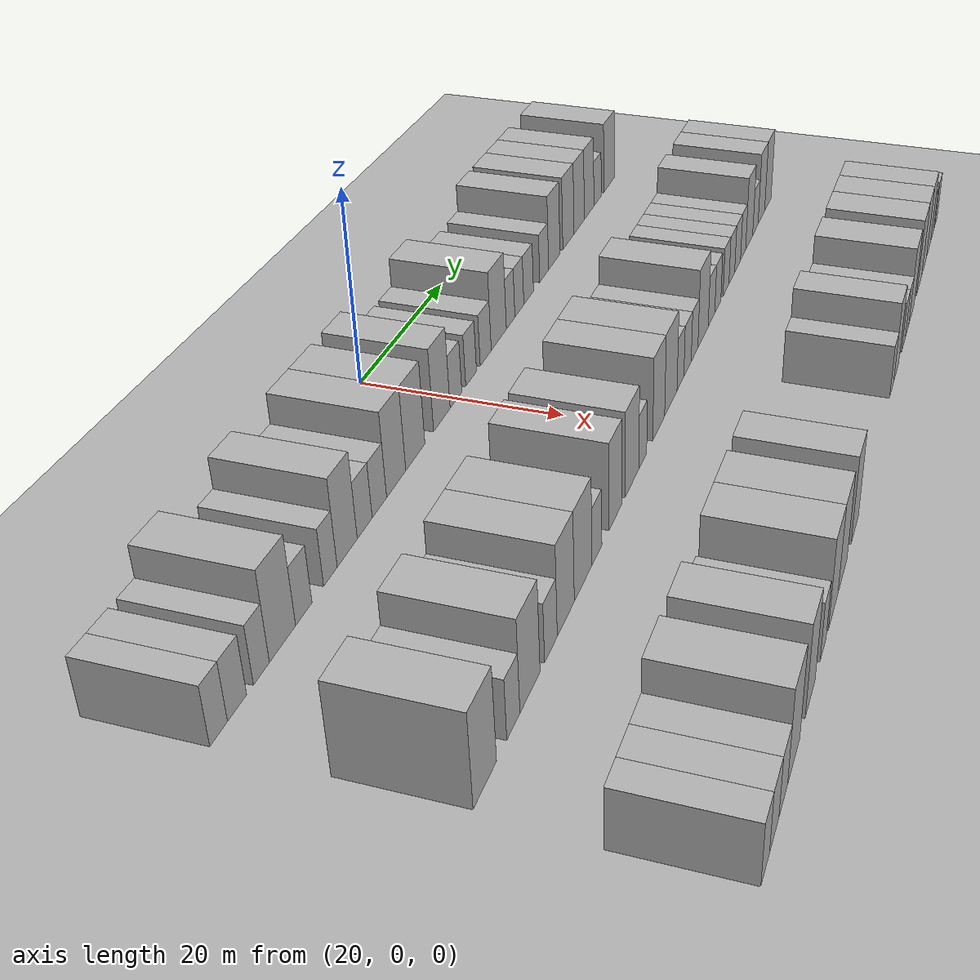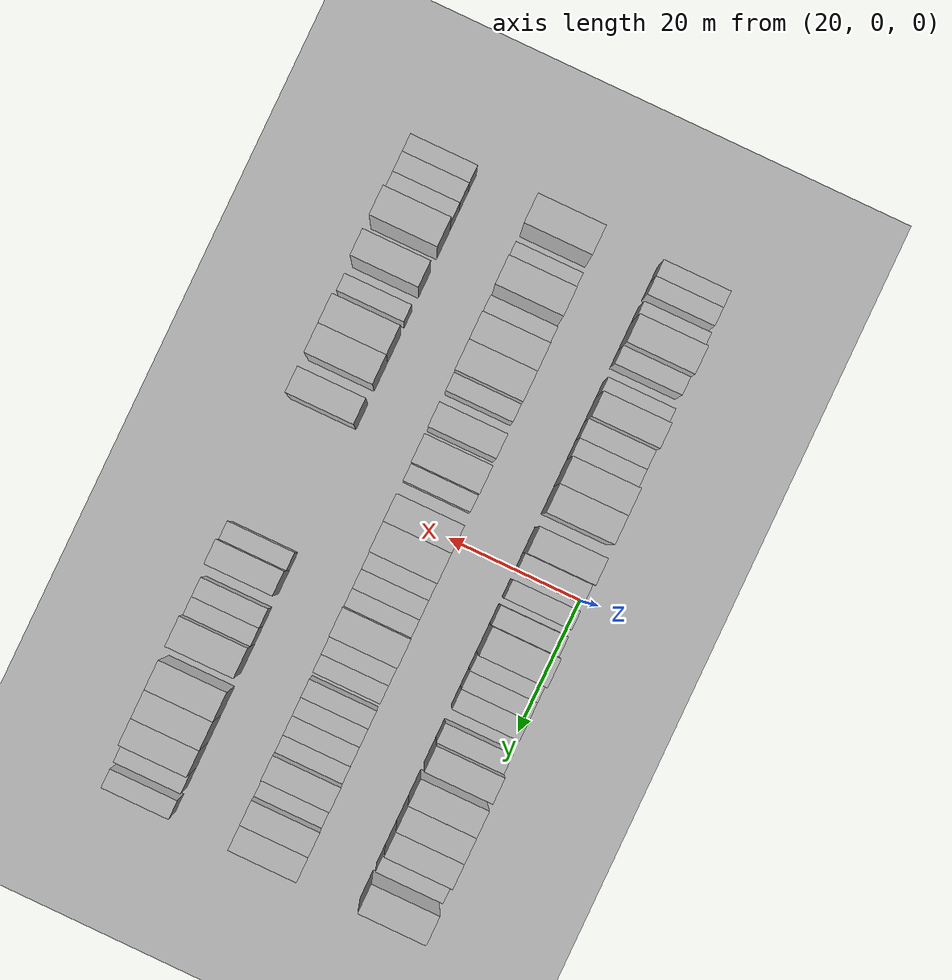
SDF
<sdf version="1.6">
 <world name="default">
  <include><name>ground_plane_1</name><uri>model://HANNAS_ground_plane</uri></include>
  <include>
   <name>ground_plane_2</name>
   <uri>model://HANNAS_ground_plane</uri>
   <pose>100 0 0  0 0 0</pose>
  </include>
  <model name="building_48">
   <static>1</static>
   <pose>25.0000 -44.8904 0 0.000000 0.000000 0.000000</pose>
   <link name="link">
    <pose>0 0 3.00 0 0 0</pose>
    <collision name="collision"><geometry><box><size>10.0000 2.4438 6.0000</size></box></geometry></collision>
    <visual name="visual">
     <cast_shadows>0</cast_shadows>
     <geometry><box><size>10.0000 2.4438 6.0000</size></box></geometry>
     <material>
      <script>
       <uri>model://HANNAS_wall/materials/scripts</uri>
       <uri>model://HANNAS_wall/materials/textures</uri>
       <name>vrc/HANNAS_wall</name>
      </script>
     </material>
    </visual>
   </link>
  </model>
  <model name="building_49">
   <static>1</static>
   <pose>25.0000 -42.3016 0 0.000000 0.000000 0.000000</pose>
   <link name="link">
    <pose>0 0 3.00 0 0 0</pose>
    <collision name="collision"><geometry><box><size>10.0000 2.7338 6.0000</size></box></geometry></collision>
    <visual name="visual">
     <cast_shadows>0</cast_shadows>
     <geometry><box><size>10.0000 2.7338 6.0000</size></box></geometry>
     <material>
      <script>
       <uri>model://HANNAS_wall/materials/scripts</uri>
       <uri>model://HANNAS_wall/materials/textures</uri>
       <name>vrc/HANNAS_wall</name>
      </script>
     </material>
    </visual>
   </link>
  </model>
  <model name="building_50">
   <static>1</static>
   <pose>25.0000 -38.7291 0 0.000000 0.000000 0.000000</pose>
   <link name="link">
    <pose>0 0 3.00 0 0 0</pose>
    <collision name="collision"><geometry><box><size>10.0000 2.4113 6.0000</size></box></geometry></collision>
    <visual name="visual">
     <cast_shadows>0</cast_shadows>
     <geometry><box><size>10.0000 2.4113 6.0000</size></box></geometry>
     <material>
      <script>
       <uri>model://HANNAS_wall/materials/scripts</uri>
       <uri>model://HANNAS_wall/materials/textures</uri>
       <name>vrc/HANNAS_wall</name>
      </script>
     </material>
    </visual>
   </link>
  </model>
  <model name="building_51">
   <static>1</static>
   <pose>25.0000 -35.4437 0 0.000000 0.000000 0.000000</pose>
   <link name="link">
    <pose>0 0 4.50 0 0 0</pose>
    <collision name="collision"><geometry><box><size>10.0000 4.1597 9.0000</size></box></geometry></collision>
    <visual name="visual">
     <cast_shadows>0</cast_shadows>
     <geometry><box><size>10.0000 4.1597 9.0000</size></box></geometry>
     <material>
      <script>
       <uri>model://HANNAS_wall/materials/scripts</uri>
       <uri>model://HANNAS_wall/materials/textures</uri>
       <name>vrc/HANNAS_wall</name>
      </script>
     </material>
    </visual>
   </link>
  </model>
  <model name="building_52">
   <static>1</static>
   <pose>25.0000 -32.0028 0 0.000000 0.000000 0.000000</pose>
   <link name="link">
    <pose>0 0 3.00 0 0 0</pose>
    <collision name="collision"><geometry><box><size>10.0000 2.7220 6.0000</size></box></geometry></collision>
    <visual name="visual">
     <cast_shadows>0</cast_shadows>
     <geometry><box><size>10.0000 2.7220 6.0000</size></box></geometry>
     <material>
      <script>
       <uri>model://HANNAS_wall/materials/scripts</uri>
       <uri>model://HANNAS_wall/materials/textures</uri>
       <name>vrc/HANNAS_wall</name>
      </script>
     </material>
    </visual>
   </link>
  </model>
  <model name="building_53">
   <static>1</static>
   <pose>25.0000 -27.4361 0 0.000000 0.000000 0.000000</pose>
   <link name="link">
    <pose>0 0 3.00 0 0 0</pose>
    <collision name="collision"><geometry><box><size>10.0000 2.4115 6.0000</size></box></geometry></collision>
    <visual name="visual">
     <cast_shadows>0</cast_shadows>
     <geometry><box><size>10.0000 2.4115 6.0000</size></box></geometry>
     <material>
      <script>
       <uri>model://HANNAS_wall/materials/scripts</uri>
       <uri>model://HANNAS_wall/materials/textures</uri>
       <name>vrc/HANNAS_wall</name>
      </script>
     </material>
    </visual>
   </link>
  </model>
  <model name="building_54">
   <static>1</static>
   <pose>25.0000 -24.3653 0 0.000000 0.000000 0.000000</pose>
   <link name="link">
    <pose>0 0 4.50 0 0 0</pose>
    <collision name="collision"><geometry><box><size>10.0000 3.7300 9.0000</size></box></geometry></collision>
    <visual name="visual">
     <cast_shadows>0</cast_shadows>
     <geometry><box><size>10.0000 3.7300 9.0000</size></box></geometry>
     <material>
      <script>
       <uri>model://HANNAS_wall/materials/scripts</uri>
       <uri>model://HANNAS_wall/materials/textures</uri>
       <name>vrc/HANNAS_wall</name>
      </script>
     </material>
    </visual>
   </link>
  </model>
  <model name="building_55">
   <static>1</static>
   <pose>25.0000 -21.0583 0 0.000000 0.000000 0.000000</pose>
   <link name="link">
    <pose>0 0 3.00 0 0 0</pose>
    <collision name="collision"><geometry><box><size>10.0000 2.8840 6.0000</size></box></geometry></collision>
    <visual name="visual">
     <cast_shadows>0</cast_shadows>
     <geometry><box><size>10.0000 2.8840 6.0000</size></box></geometry>
     <material>
      <script>
       <uri>model://HANNAS_wall/materials/scripts</uri>
       <uri>model://HANNAS_wall/materials/textures</uri>
       <name>vrc/HANNAS_wall</name>
      </script>
     </material>
    </visual>
   </link>
  </model>
  <model name="building_56">
   <static>1</static>
   <pose>25.0000 -18.1659 0 0.000000 0.000000 0.000000</pose>
   <link name="link">
    <pose>0 0 3.00 0 0 0</pose>
    <collision name="collision"><geometry><box><size>10.0000 2.9008 6.0000</size></box></geometry></collision>
    <visual name="visual">
     <cast_shadows>0</cast_shadows>
     <geometry><box><size>10.0000 2.9008 6.0000</size></box></geometry>
     <material>
      <script>
       <uri>model://HANNAS_wall/materials/scripts</uri>
       <uri>model://HANNAS_wall/materials/textures</uri>
       <name>vrc/HANNAS_wall</name>
      </script>
     </material>
    </visual>
   </link>
  </model>
  <model name="building_57">
   <static>1</static>
   <pose>25.0000 -14.7046 0 0.000000 0.000000 0.000000</pose>
   <link name="link">
    <pose>0 0 4.50 0 0 0</pose>
    <collision name="collision"><geometry><box><size>10.0000 4.0219 9.0000</size></box></geometry></collision>
    <visual name="visual">
     <cast_shadows>0</cast_shadows>
     <geometry><box><size>10.0000 4.0219 9.0000</size></box></geometry>
     <material>
      <script>
       <uri>model://HANNAS_wall/materials/scripts</uri>
       <uri>model://HANNAS_wall/materials/textures</uri>
       <name>vrc/HANNAS_wall</name>
      </script>
     </material>
    </visual>
   </link>
  </model>
  <model name="building_58">
   <static>1</static>
   <pose>25.0000 -10.5732 0 0.000000 0.000000 0.000000</pose>
   <link name="link">
    <pose>0 0 4.50 0 0 0</pose>
    <collision name="collision"><geometry><box><size>10.0000 4.2408 9.0000</size></box></geometry></collision>
    <visual name="visual">
     <cast_shadows>0</cast_shadows>
     <geometry><box><size>10.0000 4.2408 9.0000</size></box></geometry>
     <material>
      <script>
       <uri>model://HANNAS_wall/materials/scripts</uri>
       <uri>model://HANNAS_wall/materials/textures</uri>
       <name>vrc/HANNAS_wall</name>
      </script>
     </material>
    </visual>
   </link>
  </model>
  <model name="building_59">
   <static>1</static>
   <pose>25.0000 -4.4841 0 0.000000 0.000000 0.000000</pose>
   <link name="link">
    <pose>0 0 4.50 0 0 0</pose>
    <collision name="collision"><geometry><box><size>10.0000 3.9374 9.0000</size></box></geometry></collision>
    <visual name="visual">
     <cast_shadows>0</cast_shadows>
     <geometry><box><size>10.0000 3.9374 9.0000</size></box></geometry>
     <material>
      <script>
       <uri>model://HANNAS_wall/materials/scripts</uri>
       <uri>model://HANNAS_wall/materials/textures</uri>
       <name>vrc/HANNAS_wall</name>
      </script>
     </material>
    </visual>
   </link>
  </model>
  <model name="building_60">
   <static>1</static>
   <pose>25.0000 -1.0660 0 0.000000 0.000000 0.000000</pose>
   <link name="link">
    <pose>0 0 3.00 0 0 0</pose>
    <collision name="collision"><geometry><box><size>10.0000 2.8988 6.0000</size></box></geometry></collision>
    <visual name="visual">
     <cast_shadows>0</cast_shadows>
     <geometry><box><size>10.0000 2.8988 6.0000</size></box></geometry>
     <material>
      <script>
       <uri>model://HANNAS_wall/materials/scripts</uri>
       <uri>model://HANNAS_wall/materials/textures</uri>
       <name>vrc/HANNAS_wall</name>
      </script>
     </material>
    </visual>
   </link>
  </model>
  <model name="building_61">
   <static>1</static>
   <pose>25.0000 2.7797 0 0.000000 0.000000 0.000000</pose>
   <link name="link">
    <pose>0 0 3.00 0 0 0</pose>
    <collision name="collision"><geometry><box><size>10.0000 2.7926 6.0000</size></box></geometry></collision>
    <visual name="visual">
     <cast_shadows>0</cast_shadows>
     <geometry><box><size>10.0000 2.7926 6.0000</size></box></geometry>
     <material>
      <script>
       <uri>model://HANNAS_wall/materials/scripts</uri>
       <uri>model://HANNAS_wall/materials/textures</uri>
       <name>vrc/HANNAS_wall</name>
      </script>
     </material>
    </visual>
   </link>
  </model>
  <model name="building_62">
   <static>1</static>
   <pose>25.0000 6.6664 0 0.000000 0.000000 0.000000</pose>
   <link name="link">
    <pose>0 0 3.00 0 0 0</pose>
    <collision name="collision"><geometry><box><size>10.0000 2.9809 6.0000</size></box></geometry></collision>
    <visual name="visual">
     <cast_shadows>0</cast_shadows>
     <geometry><box><size>10.0000 2.9809 6.0000</size></box></geometry>
     <material>
      <script>
       <uri>model://HANNAS_wall/materials/scripts</uri>
       <uri>model://HANNAS_wall/materials/textures</uri>
       <name>vrc/HANNAS_wall</name>
      </script>
     </material>
    </visual>
   </link>
  </model>
  <model name="building_63">
   <static>1</static>
   <pose>25.0000 10.2936 0 0.000000 0.000000 0.000000</pose>
   <link name="link">
    <pose>0 0 4.50 0 0 0</pose>
    <collision name="collision"><geometry><box><size>10.0000 4.2736 9.0000</size></box></geometry></collision>
    <visual name="visual">
     <cast_shadows>0</cast_shadows>
     <geometry><box><size>10.0000 4.2736 9.0000</size></box></geometry>
     <material>
      <script>
       <uri>model://HANNAS_wall/materials/scripts</uri>
       <uri>model://HANNAS_wall/materials/textures</uri>
       <name>vrc/HANNAS_wall</name>
      </script>
     </material>
    </visual>
   </link>
  </model>
  <model name="building_64">
   <static>1</static>
   <pose>25.0000 13.6749 0 0.000000 0.000000 0.000000</pose>
   <link name="link">
    <pose>0 0 3.00 0 0 0</pose>
    <collision name="collision"><geometry><box><size>10.0000 2.4890 6.0000</size></box></geometry></collision>
    <visual name="visual">
     <cast_shadows>0</cast_shadows>
     <geometry><box><size>10.0000 2.4890 6.0000</size></box></geometry>
     <material>
      <script>
       <uri>model://HANNAS_wall/materials/scripts</uri>
       <uri>model://HANNAS_wall/materials/textures</uri>
       <name>vrc/HANNAS_wall</name>
      </script>
     </material>
    </visual>
   </link>
  </model>
  <model name="building_65">
   <static>1</static>
   <pose>25.0000 16.2699 0 0.000000 0.000000 0.000000</pose>
   <link name="link">
    <pose>0 0 3.00 0 0 0</pose>
    <collision name="collision"><geometry><box><size>10.0000 2.7009 6.0000</size></box></geometry></collision>
    <visual name="visual">
     <cast_shadows>0</cast_shadows>
     <geometry><box><size>10.0000 2.7009 6.0000</size></box></geometry>
     <material>
      <script>
       <uri>model://HANNAS_wall/materials/scripts</uri>
       <uri>model://HANNAS_wall/materials/textures</uri>
       <name>vrc/HANNAS_wall</name>
      </script>
     </material>
    </visual>
   </link>
  </model>
  <model name="building_66">
   <static>1</static>
   <pose>25.0000 19.1159 0 0.000000 0.000000 0.000000</pose>
   <link name="link">
    <pose>0 0 3.00 0 0 0</pose>
    <collision name="collision"><geometry><box><size>10.0000 2.9912 6.0000</size></box></geometry></collision>
    <visual name="visual">
     <cast_shadows>0</cast_shadows>
     <geometry><box><size>10.0000 2.9912 6.0000</size></box></geometry>
     <material>
      <script>
       <uri>model://HANNAS_wall/materials/scripts</uri>
       <uri>model://HANNAS_wall/materials/textures</uri>
       <name>vrc/HANNAS_wall</name>
      </script>
     </material>
    </visual>
   </link>
  </model>
  <model name="building_67">
   <static>1</static>
   <pose>25.0000 24.0686 0 0.000000 0.000000 0.000000</pose>
   <link name="link">
    <pose>0 0 3.00 0 0 0</pose>
    <collision name="collision"><geometry><box><size>10.0000 2.9142 6.0000</size></box></geometry></collision>
    <visual name="visual">
     <cast_shadows>0</cast_shadows>
     <geometry><box><size>10.0000 2.9142 6.0000</size></box></geometry>
     <material>
      <script>
       <uri>model://HANNAS_wall/materials/scripts</uri>
       <uri>model://HANNAS_wall/materials/textures</uri>
       <name>vrc/HANNAS_wall</name>
      </script>
     </material>
    </visual>
   </link>
  </model>
  <model name="building_68">
   <static>1</static>
   <pose>25.0000 27.4364 0 0.000000 0.000000 0.000000</pose>
   <link name="link">
    <pose>0 0 4.50 0 0 0</pose>
    <collision name="collision"><geometry><box><size>10.0000 3.8214 9.0000</size></box></geometry></collision>
    <visual name="visual">
     <cast_shadows>0</cast_shadows>
     <geometry><box><size>10.0000 3.8214 9.0000</size></box></geometry>
     <material>
      <script>
       <uri>model://HANNAS_wall/materials/scripts</uri>
       <uri>model://HANNAS_wall/materials/textures</uri>
       <name>vrc/HANNAS_wall</name>
      </script>
     </material>
    </visual>
   </link>
  </model>
  <model name="building_69">
   <static>1</static>
   <pose>25.0000 32.3258 0 0.000000 0.000000 0.000000</pose>
   <link name="link">
    <pose>0 0 4.50 0 0 0</pose>
    <collision name="collision"><geometry><box><size>10.0000 3.9573 9.0000</size></box></geometry></collision>
    <visual name="visual">
     <cast_shadows>0</cast_shadows>
     <geometry><box><size>10.0000 3.9573 9.0000</size></box></geometry>
     <material>
      <script>
       <uri>model://HANNAS_wall/materials/scripts</uri>
       <uri>model://HANNAS_wall/materials/textures</uri>
       <name>vrc/HANNAS_wall</name>
      </script>
     </material>
    </visual>
   </link>
  </model>
  <model name="building_70">
   <static>1</static>
   <pose>25.0000 36.1983 0 0.000000 0.000000 0.000000</pose>
   <link name="link">
    <pose>0 0 4.50 0 0 0</pose>
    <collision name="collision"><geometry><box><size>10.0000 3.7876 9.0000</size></box></geometry></collision>
    <visual name="visual">
     <cast_shadows>0</cast_shadows>
     <geometry><box><size>10.0000 3.7876 9.0000</size></box></geometry>
     <material>
      <script>
       <uri>model://HANNAS_wall/materials/scripts</uri>
       <uri>model://HANNAS_wall/materials/textures</uri>
       <name>vrc/HANNAS_wall</name>
      </script>
     </material>
    </visual>
   </link>
  </model>
  <model name="building_71">
   <static>1</static>
   <pose>25.0000 39.9200 0 0.000000 0.000000 0.000000</pose>
   <link name="link">
    <pose>0 0 4.50 0 0 0</pose>
    <collision name="collision"><geometry><box><size>10.0000 3.6560 9.0000</size></box></geometry></collision>
    <visual name="visual">
     <cast_shadows>0</cast_shadows>
     <geometry><box><size>10.0000 3.6560 9.0000</size></box></geometry>
     <material>
      <script>
       <uri>model://HANNAS_wall/materials/scripts</uri>
       <uri>model://HANNAS_wall/materials/textures</uri>
       <name>vrc/HANNAS_wall</name>
      </script>
     </material>
    </visual>
   </link>
  </model>
  <model name="building_72">
   <static>1</static>
   <pose>25.0000 43.1845 0 0.000000 0.000000 0.000000</pose>
   <link name="link">
    <pose>0 0 3.00 0 0 0</pose>
    <collision name="collision"><geometry><box><size>10.0000 2.8730 6.0000</size></box></geometry></collision>
    <visual name="visual">
     <cast_shadows>0</cast_shadows>
     <geometry><box><size>10.0000 2.8730 6.0000</size></box></geometry>
     <material>
      <script>
       <uri>model://HANNAS_wall/materials/scripts</uri>
       <uri>model://HANNAS_wall/materials/textures</uri>
       <name>vrc/HANNAS_wall</name>
      </script>
     </material>
    </visual>
   </link>
  </model>
  <model name="building_73">
   <static>1</static>
   <pose>25.0000 47.7677 0 0.000000 0.000000 0.000000</pose>
   <link name="link">
    <pose>0 0 4.50 0 0 0</pose>
    <collision name="collision"><geometry><box><size>10.0000 4.2934 9.0000</size></box></geometry></collision>
    <visual name="visual">
     <cast_shadows>0</cast_shadows>
     <geometry><box><size>10.0000 4.2934 9.0000</size></box></geometry>
     <material>
      <script>
       <uri>model://HANNAS_wall/materials/scripts</uri>
       <uri>model://HANNAS_wall/materials/textures</uri>
       <name>vrc/HANNAS_wall</name>
      </script>
     </material>
    </visual>
   </link>
  </model>
  <model name="building_170">
   <static>1</static>
   <pose>44.0000 -44.0339 0 0.000000 0.000000 0.000000</pose>
   <link name="link">
    <pose>0 0 4.50 0 0 0</pose>
    <collision name="collision"><geometry><box><size>10.0000 4.3616 9.0000</size></box></geometry></collision>
    <visual name="visual">
     <cast_shadows>0</cast_shadows>
     <geometry><box><size>10.0000 4.3616 9.0000</size></box></geometry>
     <material>
      <script>
       <uri>model://HANNAS_wall/materials/scripts</uri>
       <uri>model://HANNAS_wall/materials/textures</uri>
       <name>vrc/HANNAS_wall</name>
      </script>
     </material>
    </visual>
   </link>
  </model>
  <model name="building_171">
   <static>1</static>
   <pose>44.0000 -38.5172 0 0.000000 0.000000 0.000000</pose>
   <link name="link">
    <pose>0 0 3.00 0 0 0</pose>
    <collision name="collision"><geometry><box><size>10.0000 2.6718 6.0000</size></box></geometry></collision>
    <visual name="visual">
     <cast_shadows>0</cast_shadows>
     <geometry><box><size>10.0000 2.6718 6.0000</size></box></geometry>
     <material>
      <script>
       <uri>model://HANNAS_wall/materials/scripts</uri>
       <uri>model://HANNAS_wall/materials/textures</uri>
       <name>vrc/HANNAS_wall</name>
      </script>
     </material>
    </visual>
   </link>
  </model>
  <model name="building_172">
   <static>1</static>
   <pose>44.0000 -35.0351 0 0.000000 0.000000 0.000000</pose>
   <link name="link">
    <pose>0 0 4.50 0 0 0</pose>
    <collision name="collision"><geometry><box><size>10.0000 4.2924 9.0000</size></box></geometry></collision>
    <visual name="visual">
     <cast_shadows>0</cast_shadows>
     <geometry><box><size>10.0000 4.2924 9.0000</size></box></geometry>
     <material>
      <script>
       <uri>model://HANNAS_wall/materials/scripts</uri>
       <uri>model://HANNAS_wall/materials/textures</uri>
       <name>vrc/HANNAS_wall</name>
      </script>
     </material>
    </visual>
   </link>
  </model>
  <model name="building_173">
   <static>1</static>
   <pose>44.0000 -30.4312 0 0.000000 0.000000 0.000000</pose>
   <link name="link">
    <pose>0 0 3.00 0 0 0</pose>
    <collision name="collision"><geometry><box><size>10.0000 2.9153 6.0000</size></box></geometry></collision>
    <visual name="visual">
     <cast_shadows>0</cast_shadows>
     <geometry><box><size>10.0000 2.9153 6.0000</size></box></geometry>
     <material>
      <script>
       <uri>model://HANNAS_wall/materials/scripts</uri>
       <uri>model://HANNAS_wall/materials/textures</uri>
       <name>vrc/HANNAS_wall</name>
      </script>
     </material>
    </visual>
   </link>
  </model>
  <model name="building_174">
   <static>1</static>
   <pose>44.0000 -26.9191 0 0.000000 0.000000 0.000000</pose>
   <link name="link">
    <pose>0 0 4.50 0 0 0</pose>
    <collision name="collision"><geometry><box><size>10.0000 4.1088 9.0000</size></box></geometry></collision>
    <visual name="visual">
     <cast_shadows>0</cast_shadows>
     <geometry><box><size>10.0000 4.1088 9.0000</size></box></geometry>
     <material>
      <script>
       <uri>model://HANNAS_wall/materials/scripts</uri>
       <uri>model://HANNAS_wall/materials/textures</uri>
       <name>vrc/HANNAS_wall</name>
      </script>
     </material>
    </visual>
   </link>
  </model>
  <model name="building_175">
   <static>1</static>
   <pose>44.0000 -22.6178 0 0.000000 0.000000 0.000000</pose>
   <link name="link">
    <pose>0 0 4.50 0 0 0</pose>
    <collision name="collision"><geometry><box><size>10.0000 4.4938 9.0000</size></box></geometry></collision>
    <visual name="visual">
     <cast_shadows>0</cast_shadows>
     <geometry><box><size>10.0000 4.4938 9.0000</size></box></geometry>
     <material>
      <script>
       <uri>model://HANNAS_wall/materials/scripts</uri>
       <uri>model://HANNAS_wall/materials/textures</uri>
       <name>vrc/HANNAS_wall</name>
      </script>
     </material>
    </visual>
   </link>
  </model>
  <model name="building_176">
   <static>1</static>
   <pose>44.0000 -19.0262 0 0.000000 0.000000 0.000000</pose>
   <link name="link">
    <pose>0 0 3.00 0 0 0</pose>
    <collision name="collision"><geometry><box><size>10.0000 2.6893 6.0000</size></box></geometry></collision>
    <visual name="visual">
     <cast_shadows>0</cast_shadows>
     <geometry><box><size>10.0000 2.6893 6.0000</size></box></geometry>
     <material>
      <script>
       <uri>model://HANNAS_wall/materials/scripts</uri>
       <uri>model://HANNAS_wall/materials/textures</uri>
       <name>vrc/HANNAS_wall</name>
      </script>
     </material>
    </visual>
   </link>
  </model>
  <model name="building_177">
   <static>1</static>
   <pose>44.0000 -13.8633 0 0.000000 0.000000 0.000000</pose>
   <link name="link">
    <pose>0 0 4.50 0 0 0</pose>
    <collision name="collision"><geometry><box><size>10.0000 3.6364 9.0000</size></box></geometry></collision>
    <visual name="visual">
     <cast_shadows>0</cast_shadows>
     <geometry><box><size>10.0000 3.6364 9.0000</size></box></geometry>
     <material>
      <script>
       <uri>model://HANNAS_wall/materials/scripts</uri>
       <uri>model://HANNAS_wall/materials/textures</uri>
       <name>vrc/HANNAS_wall</name>
      </script>
     </material>
    </visual>
   </link>
  </model>
  <model name="building_178">
   <static>1</static>
   <pose>44.0000 -8.9491 0 0.000000 0.000000 0.000000</pose>
   <link name="link">
    <pose>0 0 4.50 0 0 0</pose>
    <collision name="collision"><geometry><box><size>10.0000 4.1920 9.0000</size></box></geometry></collision>
    <visual name="visual">
     <cast_shadows>0</cast_shadows>
     <geometry><box><size>10.0000 4.1920 9.0000</size></box></geometry>
     <material>
      <script>
       <uri>model://HANNAS_wall/materials/scripts</uri>
       <uri>model://HANNAS_wall/materials/textures</uri>
       <name>vrc/HANNAS_wall</name>
      </script>
     </material>
    </visual>
   </link>
  </model>
  <model name="building_179">
   <static>1</static>
   <pose>44.0000 -5.5780 0 0.000000 0.000000 0.000000</pose>
   <link name="link">
    <pose>0 0 3.00 0 0 0</pose>
    <collision name="collision"><geometry><box><size>10.0000 2.5501 6.0000</size></box></geometry></collision>
    <visual name="visual">
     <cast_shadows>0</cast_shadows>
     <geometry><box><size>10.0000 2.5501 6.0000</size></box></geometry>
     <material>
      <script>
       <uri>model://HANNAS_wall/materials/scripts</uri>
       <uri>model://HANNAS_wall/materials/textures</uri>
       <name>vrc/HANNAS_wall</name>
      </script>
     </material>
    </visual>
   </link>
  </model>
  <model name="building_180">
   <static>1</static>
   <pose>44.0000 -0.2696 0 0.000000 0.000000 0.000000</pose>
   <link name="link">
    <pose>0 0 4.50 0 0 0</pose>
    <collision name="collision"><geometry><box><size>10.0000 4.0667 9.0000</size></box></geometry></collision>
    <visual name="visual">
     <cast_shadows>0</cast_shadows>
     <geometry><box><size>10.0000 4.0667 9.0000</size></box></geometry>
     <material>
      <script>
       <uri>model://HANNAS_wall/materials/scripts</uri>
       <uri>model://HANNAS_wall/materials/textures</uri>
       <name>vrc/HANNAS_wall</name>
      </script>
     </material>
    </visual>
   </link>
  </model>
  <model name="building_181">
   <static>1</static>
   <pose>44.0000 3.9824 0 0.000000 0.000000 0.000000</pose>
   <link name="link">
    <pose>0 0 4.50 0 0 0</pose>
    <collision name="collision"><geometry><box><size>10.0000 4.4374 9.0000</size></box></geometry></collision>
    <visual name="visual">
     <cast_shadows>0</cast_shadows>
     <geometry><box><size>10.0000 4.4374 9.0000</size></box></geometry>
     <material>
      <script>
       <uri>model://HANNAS_wall/materials/scripts</uri>
       <uri>model://HANNAS_wall/materials/textures</uri>
       <name>vrc/HANNAS_wall</name>
      </script>
     </material>
    </visual>
   </link>
  </model>
  <model name="building_182">
   <static>1</static>
   <pose>44.0000 7.4896 0 0.000000 0.000000 0.000000</pose>
   <link name="link">
    <pose>0 0 3.00 0 0 0</pose>
    <collision name="collision"><geometry><box><size>10.0000 2.5770 6.0000</size></box></geometry></collision>
    <visual name="visual">
     <cast_shadows>0</cast_shadows>
     <geometry><box><size>10.0000 2.5770 6.0000</size></box></geometry>
     <material>
      <script>
       <uri>model://HANNAS_wall/materials/scripts</uri>
       <uri>model://HANNAS_wall/materials/textures</uri>
       <name>vrc/HANNAS_wall</name>
      </script>
     </material>
    </visual>
   </link>
  </model>
  <model name="building_183">
   <static>1</static>
   <pose>44.0000 10.2066 0 0.000000 0.000000 0.000000</pose>
   <link name="link">
    <pose>0 0 3.00 0 0 0</pose>
    <collision name="collision"><geometry><box><size>10.0000 2.8570 6.0000</size></box></geometry></collision>
    <visual name="visual">
     <cast_shadows>0</cast_shadows>
     <geometry><box><size>10.0000 2.8570 6.0000</size></box></geometry>
     <material>
      <script>
       <uri>model://HANNAS_wall/materials/scripts</uri>
       <uri>model://HANNAS_wall/materials/textures</uri>
       <name>vrc/HANNAS_wall</name>
      </script>
     </material>
    </visual>
   </link>
  </model>
  <model name="building_184">
   <static>1</static>
   <pose>44.0000 12.9665 0 0.000000 0.000000 0.000000</pose>
   <link name="link">
    <pose>0 0 3.00 0 0 0</pose>
    <collision name="collision"><geometry><box><size>10.0000 2.6627 6.0000</size></box></geometry></collision>
    <visual name="visual">
     <cast_shadows>0</cast_shadows>
     <geometry><box><size>10.0000 2.6627 6.0000</size></box></geometry>
     <material>
      <script>
       <uri>model://HANNAS_wall/materials/scripts</uri>
       <uri>model://HANNAS_wall/materials/textures</uri>
       <name>vrc/HANNAS_wall</name>
      </script>
     </material>
    </visual>
   </link>
  </model>
  <model name="building_185">
   <static>1</static>
   <pose>44.0000 16.4330 0 0.000000 0.000000 0.000000</pose>
   <link name="link">
    <pose>0 0 4.50 0 0 0</pose>
    <collision name="collision"><geometry><box><size>10.0000 4.2705 9.0000</size></box></geometry></collision>
    <visual name="visual">
     <cast_shadows>0</cast_shadows>
     <geometry><box><size>10.0000 4.2705 9.0000</size></box></geometry>
     <material>
      <script>
       <uri>model://HANNAS_wall/materials/scripts</uri>
       <uri>model://HANNAS_wall/materials/textures</uri>
       <name>vrc/HANNAS_wall</name>
      </script>
     </material>
    </visual>
   </link>
  </model>
  <model name="building_186">
   <static>1</static>
   <pose>44.0000 19.9833 0 0.000000 0.000000 0.000000</pose>
   <link name="link">
    <pose>0 0 3.00 0 0 0</pose>
    <collision name="collision"><geometry><box><size>10.0000 2.8300 6.0000</size></box></geometry></collision>
    <visual name="visual">
     <cast_shadows>0</cast_shadows>
     <geometry><box><size>10.0000 2.8300 6.0000</size></box></geometry>
     <material>
      <script>
       <uri>model://HANNAS_wall/materials/scripts</uri>
       <uri>model://HANNAS_wall/materials/textures</uri>
       <name>vrc/HANNAS_wall</name>
      </script>
     </material>
    </visual>
   </link>
  </model>
  <model name="building_187">
   <static>1</static>
   <pose>44.0000 22.7374 0 0.000000 0.000000 0.000000</pose>
   <link name="link">
    <pose>0 0 3.00 0 0 0</pose>
    <collision name="collision"><geometry><box><size>10.0000 2.6782 6.0000</size></box></geometry></collision>
    <visual name="visual">
     <cast_shadows>0</cast_shadows>
     <geometry><box><size>10.0000 2.6782 6.0000</size></box></geometry>
     <material>
      <script>
       <uri>model://HANNAS_wall/materials/scripts</uri>
       <uri>model://HANNAS_wall/materials/textures</uri>
       <name>vrc/HANNAS_wall</name>
      </script>
     </material>
    </visual>
   </link>
  </model>
  <model name="building_188">
   <static>1</static>
   <pose>44.0000 26.4315 0 0.000000 0.000000 0.000000</pose>
   <link name="link">
    <pose>0 0 3.00 0 0 0</pose>
    <collision name="collision"><geometry><box><size>10.0000 2.7100 6.0000</size></box></geometry></collision>
    <visual name="visual">
     <cast_shadows>0</cast_shadows>
     <geometry><box><size>10.0000 2.7100 6.0000</size></box></geometry>
     <material>
      <script>
       <uri>model://HANNAS_wall/materials/scripts</uri>
       <uri>model://HANNAS_wall/materials/textures</uri>
       <name>vrc/HANNAS_wall</name>
      </script>
     </material>
    </visual>
   </link>
  </model>
  <model name="building_189">
   <static>1</static>
   <pose>44.0000 29.1424 0 0.000000 0.000000 0.000000</pose>
   <link name="link">
    <pose>0 0 3.00 0 0 0</pose>
    <collision name="collision"><geometry><box><size>10.0000 2.7119 6.0000</size></box></geometry></collision>
    <visual name="visual">
     <cast_shadows>0</cast_shadows>
     <geometry><box><size>10.0000 2.7119 6.0000</size></box></geometry>
     <material>
      <script>
       <uri>model://HANNAS_wall/materials/scripts</uri>
       <uri>model://HANNAS_wall/materials/textures</uri>
       <name>vrc/HANNAS_wall</name>
      </script>
     </material>
    </visual>
   </link>
  </model>
  <model name="building_190">
   <static>1</static>
   <pose>44.0000 31.9244 0 0.000000 0.000000 0.000000</pose>
   <link name="link">
    <pose>0 0 3.00 0 0 0</pose>
    <collision name="collision"><geometry><box><size>10.0000 2.8520 6.0000</size></box></geometry></collision>
    <visual name="visual">
     <cast_shadows>0</cast_shadows>
     <geometry><box><size>10.0000 2.8520 6.0000</size></box></geometry>
     <material>
      <script>
       <uri>model://HANNAS_wall/materials/scripts</uri>
       <uri>model://HANNAS_wall/materials/textures</uri>
       <name>vrc/HANNAS_wall</name>
      </script>
     </material>
    </visual>
   </link>
  </model>
  <model name="building_191">
   <static>1</static>
   <pose>44.0000 34.6269 0 0.000000 0.000000 0.000000</pose>
   <link name="link">
    <pose>0 0 3.00 0 0 0</pose>
    <collision name="collision"><geometry><box><size>10.0000 2.5531 6.0000</size></box></geometry></collision>
    <visual name="visual">
     <cast_shadows>0</cast_shadows>
     <geometry><box><size>10.0000 2.5531 6.0000</size></box></geometry>
     <material>
      <script>
       <uri>model://HANNAS_wall/materials/scripts</uri>
       <uri>model://HANNAS_wall/materials/textures</uri>
       <name>vrc/HANNAS_wall</name>
      </script>
     </material>
    </visual>
   </link>
  </model>
  <model name="building_192">
   <static>1</static>
   <pose>44.0000 37.7241 0 0.000000 0.000000 0.000000</pose>
   <link name="link">
    <pose>0 0 4.50 0 0 0</pose>
    <collision name="collision"><geometry><box><size>10.0000 3.6412 9.0000</size></box></geometry></collision>
    <visual name="visual">
     <cast_shadows>0</cast_shadows>
     <geometry><box><size>10.0000 3.6412 9.0000</size></box></geometry>
     <material>
      <script>
       <uri>model://HANNAS_wall/materials/scripts</uri>
       <uri>model://HANNAS_wall/materials/textures</uri>
       <name>vrc/HANNAS_wall</name>
      </script>
     </material>
    </visual>
   </link>
  </model>
  <model name="building_193">
   <static>1</static>
   <pose>44.0000 40.9850 0 0.000000 0.000000 0.000000</pose>
   <link name="link">
    <pose>0 0 3.00 0 0 0</pose>
    <collision name="collision"><geometry><box><size>10.0000 2.8806 6.0000</size></box></geometry></collision>
    <visual name="visual">
     <cast_shadows>0</cast_shadows>
     <geometry><box><size>10.0000 2.8806 6.0000</size></box></geometry>
     <material>
      <script>
       <uri>model://HANNAS_wall/materials/scripts</uri>
       <uri>model://HANNAS_wall/materials/textures</uri>
       <name>vrc/HANNAS_wall</name>
      </script>
     </material>
    </visual>
   </link>
  </model>
  <model name="building_194">
   <static>1</static>
   <pose>44.0000 44.2427 0 0.000000 0.000000 0.000000</pose>
   <link name="link">
    <pose>0 0 4.50 0 0 0</pose>
    <collision name="collision"><geometry><box><size>10.0000 3.6348 9.0000</size></box></geometry></collision>
    <visual name="visual">
     <cast_shadows>0</cast_shadows>
     <geometry><box><size>10.0000 3.6348 9.0000</size></box></geometry>
     <material>
      <script>
       <uri>model://HANNAS_wall/materials/scripts</uri>
       <uri>model://HANNAS_wall/materials/textures</uri>
       <name>vrc/HANNAS_wall</name>
      </script>
     </material>
    </visual>
   </link>
  </model>
  <model name="building_195">
   <static>1</static>
   <pose>44.0000 47.8875 0 0.000000 0.000000 0.000000</pose>
   <link name="link">
    <pose>0 0 4.50 0 0 0</pose>
    <collision name="collision"><geometry><box><size>10.0000 3.6547 9.0000</size></box></geometry></collision>
    <visual name="visual">
     <cast_shadows>0</cast_shadows>
     <geometry><box><size>10.0000 3.6547 9.0000</size></box></geometry>
     <material>
      <script>
       <uri>model://HANNAS_wall/materials/scripts</uri>
       <uri>model://HANNAS_wall/materials/textures</uri>
       <name>vrc/HANNAS_wall</name>
      </script>
     </material>
    </visual>
   </link>
  </model>
  <model name="building_294">
   <static>1</static>
   <pose>63.0000 -45.6068 0 0.000000 0.000000 0.000000</pose>
   <link name="link">
    <pose>0 0 3.00 0 0 0</pose>
    <collision name="collision"><geometry><box><size>10.0000 2.6163 6.0000</size></box></geometry></collision>
    <visual name="visual">
     <cast_shadows>0</cast_shadows>
     <geometry><box><size>10.0000 2.6163 6.0000</size></box></geometry>
     <material>
      <script>
       <uri>model://HANNAS_wall/materials/scripts</uri>
       <uri>model://HANNAS_wall/materials/textures</uri>
       <name>vrc/HANNAS_wall</name>
      </script>
     </material>
    </visual>
   </link>
  </model>
  <model name="building_295">
   <static>1</static>
   <pose>63.0000 -42.8127 0 0.000000 0.000000 0.000000</pose>
   <link name="link">
    <pose>0 0 3.00 0 0 0</pose>
    <collision name="collision"><geometry><box><size>10.0000 2.9718 6.0000</size></box></geometry></collision>
    <visual name="visual">
     <cast_shadows>0</cast_shadows>
     <geometry><box><size>10.0000 2.9718 6.0000</size></box></geometry>
     <material>
      <script>
       <uri>model://HANNAS_wall/materials/scripts</uri>
       <uri>model://HANNAS_wall/materials/textures</uri>
       <name>vrc/HANNAS_wall</name>
      </script>
     </material>
    </visual>
   </link>
  </model>
  <model name="building_296">
   <static>1</static>
   <pose>63.0000 -39.8739 0 0.000000 0.000000 0.000000</pose>
   <link name="link">
    <pose>0 0 3.00 0 0 0</pose>
    <collision name="collision"><geometry><box><size>10.0000 2.9059 6.0000</size></box></geometry></collision>
    <visual name="visual">
     <cast_shadows>0</cast_shadows>
     <geometry><box><size>10.0000 2.9059 6.0000</size></box></geometry>
     <material>
      <script>
       <uri>model://HANNAS_wall/materials/scripts</uri>
       <uri>model://HANNAS_wall/materials/textures</uri>
       <name>vrc/HANNAS_wall</name>
      </script>
     </material>
    </visual>
   </link>
  </model>
  <model name="building_297">
   <static>1</static>
   <pose>63.0000 -36.2416 0 0.000000 0.000000 0.000000</pose>
   <link name="link">
    <pose>0 0 4.50 0 0 0</pose>
    <collision name="collision"><geometry><box><size>10.0000 4.3586 9.0000</size></box></geometry></collision>
    <visual name="visual">
     <cast_shadows>0</cast_shadows>
     <geometry><box><size>10.0000 4.3586 9.0000</size></box></geometry>
     <material>
      <script>
       <uri>model://HANNAS_wall/materials/scripts</uri>
       <uri>model://HANNAS_wall/materials/textures</uri>
       <name>vrc/HANNAS_wall</name>
      </script>
     </material>
    </visual>
   </link>
  </model>
  <model name="building_298">
   <static>1</static>
   <pose>63.0000 -30.1069 0 0.000000 0.000000 0.000000</pose>
   <link name="link">
    <pose>0 0 4.50 0 0 0</pose>
    <collision name="collision"><geometry><box><size>10.0000 3.9107 9.0000</size></box></geometry></collision>
    <visual name="visual">
     <cast_shadows>0</cast_shadows>
     <geometry><box><size>10.0000 3.9107 9.0000</size></box></geometry>
     <material>
      <script>
       <uri>model://HANNAS_wall/materials/scripts</uri>
       <uri>model://HANNAS_wall/materials/textures</uri>
       <name>vrc/HANNAS_wall</name>
      </script>
     </material>
    </visual>
   </link>
  </model>
  <model name="building_299">
   <static>1</static>
   <pose>63.0000 -24.8744 0 0.000000 0.000000 0.000000</pose>
   <link name="link">
    <pose>0 0 3.00 0 0 0</pose>
    <collision name="collision"><geometry><box><size>10.0000 2.5545 6.0000</size></box></geometry></collision>
    <visual name="visual">
     <cast_shadows>0</cast_shadows>
     <geometry><box><size>10.0000 2.5545 6.0000</size></box></geometry>
     <material>
      <script>
       <uri>model://HANNAS_wall/materials/scripts</uri>
       <uri>model://HANNAS_wall/materials/textures</uri>
       <name>vrc/HANNAS_wall</name>
      </script>
     </material>
    </visual>
   </link>
  </model>
  <model name="building_300">
   <static>1</static>
   <pose>63.0000 -20.4399 0 0.000000 0.000000 0.000000</pose>
   <link name="link">
    <pose>0 0 4.50 0 0 0</pose>
    <collision name="collision"><geometry><box><size>10.0000 4.3145 9.0000</size></box></geometry></collision>
    <visual name="visual">
     <cast_shadows>0</cast_shadows>
     <geometry><box><size>10.0000 4.3145 9.0000</size></box></geometry>
     <material>
      <script>
       <uri>model://HANNAS_wall/materials/scripts</uri>
       <uri>model://HANNAS_wall/materials/textures</uri>
       <name>vrc/HANNAS_wall</name>
      </script>
     </material>
    </visual>
   </link>
  </model>
  <model name="building_301">
   <static>1</static>
   <pose>63.0000 -16.1109 0 0.000000 0.000000 0.000000</pose>
   <link name="link">
    <pose>0 0 4.50 0 0 0</pose>
    <collision name="collision"><geometry><box><size>10.0000 4.3434 9.0000</size></box></geometry></collision>
    <visual name="visual">
     <cast_shadows>0</cast_shadows>
     <geometry><box><size>10.0000 4.3434 9.0000</size></box></geometry>
     <material>
      <script>
       <uri>model://HANNAS_wall/materials/scripts</uri>
       <uri>model://HANNAS_wall/materials/textures</uri>
       <name>vrc/HANNAS_wall</name>
      </script>
     </material>
    </visual>
   </link>
  </model>
  <model name="building_302">
   <static>1</static>
   <pose>63.0000 -10.0133 0 0.000000 0.000000 0.000000</pose>
   <link name="link">
    <pose>0 0 4.50 0 0 0</pose>
    <collision name="collision"><geometry><box><size>10.0000 3.8518 9.0000</size></box></geometry></collision>
    <visual name="visual">
     <cast_shadows>0</cast_shadows>
     <geometry><box><size>10.0000 3.8518 9.0000</size></box></geometry>
     <material>
      <script>
       <uri>model://HANNAS_wall/materials/scripts</uri>
       <uri>model://HANNAS_wall/materials/textures</uri>
       <name>vrc/HANNAS_wall</name>
      </script>
     </material>
    </visual>
   </link>
  </model>
  <model name="building_303">
   <static>1</static>
   <pose>63.0000 11.9627 0 0.000000 0.000000 0.000000</pose>
   <link name="link">
    <pose>0 0 3.00 0 0 0</pose>
    <collision name="collision"><geometry><box><size>10.0000 2.7001 6.0000</size></box></geometry></collision>
    <visual name="visual">
     <cast_shadows>0</cast_shadows>
     <geometry><box><size>10.0000 2.7001 6.0000</size></box></geometry>
     <material>
      <script>
       <uri>model://HANNAS_wall/materials/scripts</uri>
       <uri>model://HANNAS_wall/materials/textures</uri>
       <name>vrc/HANNAS_wall</name>
      </script>
     </material>
    </visual>
   </link>
  </model>
  <model name="building_304">
   <static>1</static>
   <pose>63.0000 15.1343 0 0.000000 0.000000 0.000000</pose>
   <link name="link">
    <pose>0 0 4.50 0 0 0</pose>
    <collision name="collision"><geometry><box><size>10.0000 3.6431 9.0000</size></box></geometry></collision>
    <visual name="visual">
     <cast_shadows>0</cast_shadows>
     <geometry><box><size>10.0000 3.6431 9.0000</size></box></geometry>
     <material>
      <script>
       <uri>model://HANNAS_wall/materials/scripts</uri>
       <uri>model://HANNAS_wall/materials/textures</uri>
       <name>vrc/HANNAS_wall</name>
      </script>
     </material>
    </visual>
   </link>
  </model>
  <model name="building_305">
   <static>1</static>
   <pose>63.0000 20.3983 0 0.000000 0.000000 0.000000</pose>
   <link name="link">
    <pose>0 0 3.00 0 0 0</pose>
    <collision name="collision"><geometry><box><size>10.0000 2.8849 6.0000</size></box></geometry></collision>
    <visual name="visual">
     <cast_shadows>0</cast_shadows>
     <geometry><box><size>10.0000 2.8849 6.0000</size></box></geometry>
     <material>
      <script>
       <uri>model://HANNAS_wall/materials/scripts</uri>
       <uri>model://HANNAS_wall/materials/textures</uri>
       <name>vrc/HANNAS_wall</name>
      </script>
     </material>
    </visual>
   </link>
  </model>
  <model name="building_306">
   <static>1</static>
   <pose>63.0000 23.1919 0 0.000000 0.000000 0.000000</pose>
   <link name="link">
    <pose>0 0 3.00 0 0 0</pose>
    <collision name="collision"><geometry><box><size>10.0000 2.7024 6.0000</size></box></geometry></collision>
    <visual name="visual">
     <cast_shadows>0</cast_shadows>
     <geometry><box><size>10.0000 2.7024 6.0000</size></box></geometry>
     <material>
      <script>
       <uri>model://HANNAS_wall/materials/scripts</uri>
       <uri>model://HANNAS_wall/materials/textures</uri>
       <name>vrc/HANNAS_wall</name>
      </script>
     </material>
    </visual>
   </link>
  </model>
  <model name="building_307">
   <static>1</static>
   <pose>63.0000 26.7644 0 0.000000 0.000000 0.000000</pose>
   <link name="link">
    <pose>0 0 4.50 0 0 0</pose>
    <collision name="collision"><geometry><box><size>10.0000 4.4426 9.0000</size></box></geometry></collision>
    <visual name="visual">
     <cast_shadows>0</cast_shadows>
     <geometry><box><size>10.0000 4.4426 9.0000</size></box></geometry>
     <material>
      <script>
       <uri>model://HANNAS_wall/materials/scripts</uri>
       <uri>model://HANNAS_wall/materials/textures</uri>
       <name>vrc/HANNAS_wall</name>
      </script>
     </material>
    </visual>
   </link>
  </model>
  <model name="building_308">
   <static>1</static>
   <pose>63.0000 33.1503 0 0.000000 0.000000 0.000000</pose>
   <link name="link">
    <pose>0 0 4.50 0 0 0</pose>
    <collision name="collision"><geometry><box><size>10.0000 4.3292 9.0000</size></box></geometry></collision>
    <visual name="visual">
     <cast_shadows>0</cast_shadows>
     <geometry><box><size>10.0000 4.3292 9.0000</size></box></geometry>
     <material>
      <script>
       <uri>model://HANNAS_wall/materials/scripts</uri>
       <uri>model://HANNAS_wall/materials/textures</uri>
       <name>vrc/HANNAS_wall</name>
      </script>
     </material>
    </visual>
   </link>
  </model>
  <model name="building_309">
   <static>1</static>
   <pose>63.0000 37.4042 0 0.000000 0.000000 0.000000</pose>
   <link name="link">
    <pose>0 0 4.50 0 0 0</pose>
    <collision name="collision"><geometry><box><size>10.0000 4.1785 9.0000</size></box></geometry></collision>
    <visual name="visual">
     <cast_shadows>0</cast_shadows>
     <geometry><box><size>10.0000 4.1785 9.0000</size></box></geometry>
     <material>
      <script>
       <uri>model://HANNAS_wall/materials/scripts</uri>
       <uri>model://HANNAS_wall/materials/textures</uri>
       <name>vrc/HANNAS_wall</name>
      </script>
     </material>
    </visual>
   </link>
  </model>
  <model name="building_310">
   <static>1</static>
   <pose>63.0000 41.4362 0 0.000000 0.000000 0.000000</pose>
   <link name="link">
    <pose>0 0 4.50 0 0 0</pose>
    <collision name="collision"><geometry><box><size>10.0000 3.8855 9.0000</size></box></geometry></collision>
    <visual name="visual">
     <cast_shadows>0</cast_shadows>
     <geometry><box><size>10.0000 3.8855 9.0000</size></box></geometry>
     <material>
      <script>
       <uri>model://HANNAS_wall/materials/scripts</uri>
       <uri>model://HANNAS_wall/materials/textures</uri>
       <name>vrc/HANNAS_wall</name>
      </script>
     </material>
    </visual>
   </link>
  </model>
  <model name="building_311">
   <static>1</static>
   <pose>63.0000 44.8527 0 0.000000 0.000000 0.000000</pose>
   <link name="link">
    <pose>0 0 3.00 0 0 0</pose>
    <collision name="collision"><geometry><box><size>10.0000 2.9476 6.0000</size></box></geometry></collision>
    <visual name="visual">
     <cast_shadows>0</cast_shadows>
     <geometry><box><size>10.0000 2.9476 6.0000</size></box></geometry>
     <material>
      <script>
       <uri>model://HANNAS_wall/materials/scripts</uri>
       <uri>model://HANNAS_wall/materials/textures</uri>
       <name>vrc/HANNAS_wall</name>
      </script>
     </material>
    </visual>
   </link>
  </model>
  <model name="building_312">
   <static>1</static>
   <pose>63.0000 48.7160 0 0.000000 0.000000 0.000000</pose>
   <link name="link">
    <pose>0 0 3.00 0 0 0</pose>
    <collision name="collision"><geometry><box><size>10.0000 2.7790 6.0000</size></box></geometry></collision>
    <visual name="visual">
     <cast_shadows>0</cast_shadows>
     <geometry><box><size>10.0000 2.7790 6.0000</size></box></geometry>
     <material>
      <script>
       <uri>model://HANNAS_wall/materials/scripts</uri>
       <uri>model://HANNAS_wall/materials/textures</uri>
       <name>vrc/HANNAS_wall</name>
      </script>
     </material>
    </visual>
   </link>
  </model>
 </world>
</sdf>
